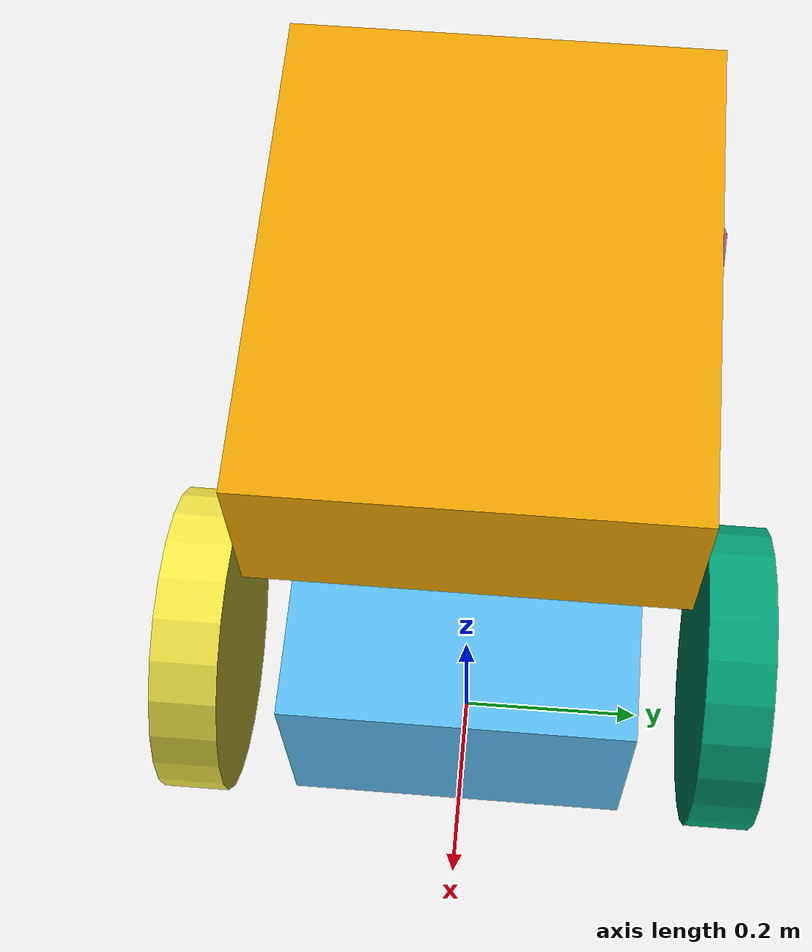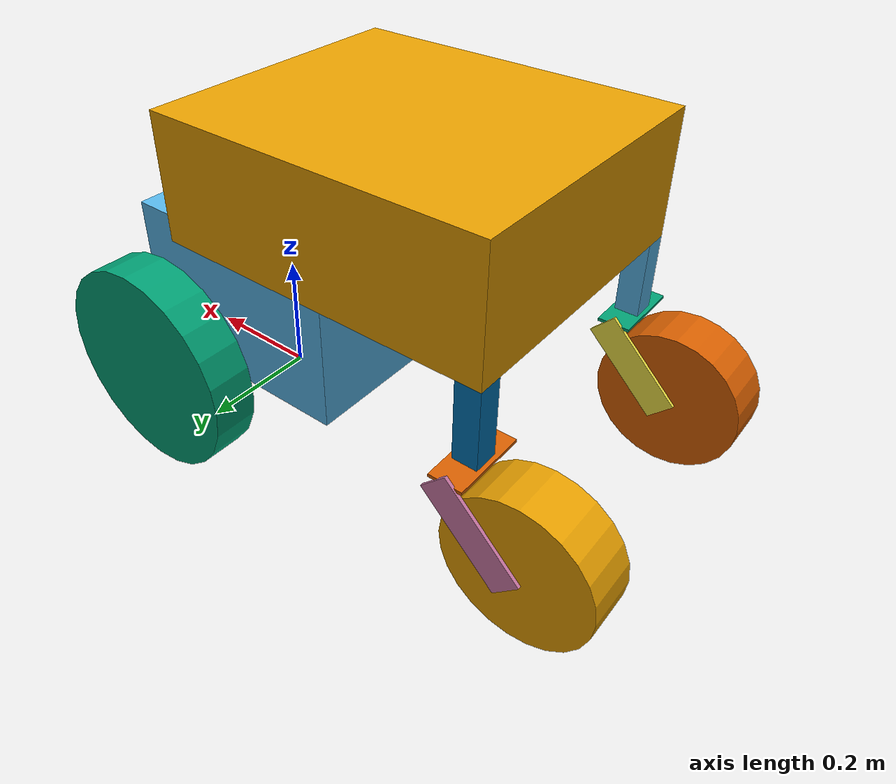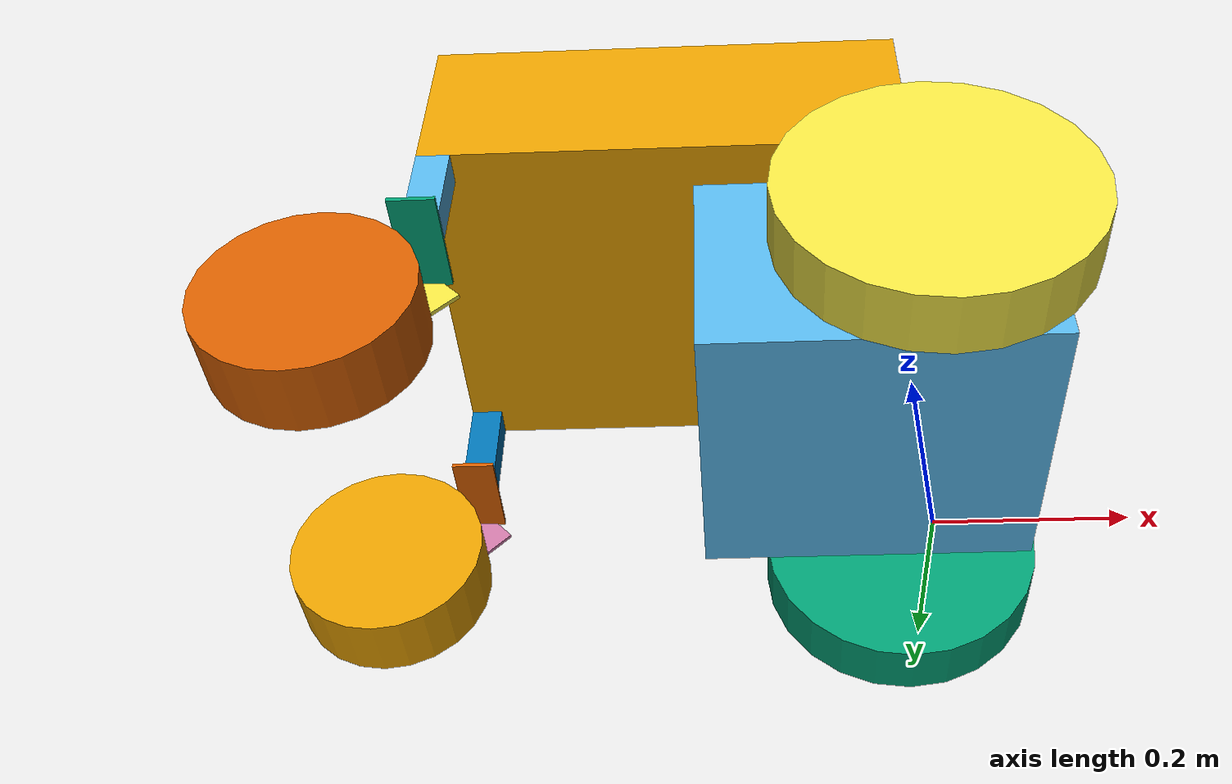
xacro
<?xml version="1.0"?>
<robot
	xmlns:xacro="http://www.ros.org/wiki/xacro" name="mobot">
	<xacro:include filename= "$(find exp1)/urdf/mobot_xacro_defs.xacro" />
	<xacro:include filename= "$(find exp1)/urdf/mobot_static_links.xacro" />
	<xacro:include filename= "$(find exp1)/urdf/mobot_wheels.xacro" />
	<xacro:include filename= "$(find exp1)/urdf/casters.xacro" />
	<xacro:include filename= "$(find exp1)/urdf/gazebo_tags.xacro" />
</robot>

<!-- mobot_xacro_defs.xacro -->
<robot
	xmlns:xacro="http://www.ros.org/wiki/xacro" >
	<!-- define the base-link origin to lie at floor level, between the drive wheels -->
	<!-- main body is a simple box: origin is a center of box -->
	<xacro:property name="bodylen" value="0.5461" />
	<xacro:property name="bodywidth" value="0.4572" />
	<xacro:property name="bodyheight" value="0.2" />
	<xacro:property name="bodyclearance" value="0.4" />
	<!-- clearance from bottom of the box to ground -->

	<!--derived values -->
	<xacro:property name="half_bodylen" value="${bodylen/2.0}" />
	<xacro:property name="half_bodyheight" value="${bodyheight/2.0}" />
	<!-- placement of the main body relative to base link frame -->
	<xacro:property name="bodyOX" value="${-half_bodylen}" />
	<xacro:property name="bodyOY" value="0" />
	<xacro:property name="bodyOZ" value="0.45" />

	<!--define the drive-wheel dimensions -->
	<xacro:property name="tirediam" value="0.3302" />
	<xacro:property name="tirerad" value="${tirediam/2.0}" />
	<xacro:property name="tirewidth" value="0.06985" />
	<!-- "track" is the distance between the drive wheels -->
	<xacro:property name="track" value="0.56515" />

	<!-- battery box -->
	<xacro:property name="batterylen" value="0.381" />
	<xacro:property name="batterywidth" value="0.3556" />
	<xacro:property name="batteryheight" value="0.254" />
	<!-- placement of battery box realtive to the base link frame -->
	<xacro:property name="batOX" value="-0.05" />
	<xacro:property name="batOY" value="0" />
	<xacro:property name="batOZ" value="0.22" />

	<xacro:property name="M_PI" value="3.1415926535897932" />
	<xacro:property name="boschwidth" value="0.0381" />
	<xacro:property name="casterdrop" value="0.125" />
	<xacro:property name="bracketwidth" value="0.1175" />
	<xacro:property name="bracketheight" value="0.16" />
	<xacro:property name="bracketthick" value="0.0508" />
	<xacro:property name="bracketangle" value="0.7854" />
	<xacro:property name="casterwidth" value="0.0826" />
	<xacro:property name="casterdiam" value="0.2286" />

	<!-- here is a default inertial matrix with small, but legal values; use this when don't need accuracy for I-->
	<!-- model will assign inertia matrix dominated by, main body box -->
	<xacro:macro name="default_inertial" params="mass">
		<inertial>
			<mass value="${mass}"/>
			<inertia ixx="0.01" ixy="0.0" ixz="0.0" iyy="0.01" iyz="0.0" izz="0.01"	/>
		</inertial>
	</xacro:macro>
	<xacro:default_inertial mass="1"/>
</robot>

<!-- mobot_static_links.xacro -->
<robot
	xmlns:xacros="http://www.ros.org/wiki/xacro" name="static_links">
	<link name="base_link">
	  <visual>
	    <geometry>
		<box size="${bodylen} ${bodywidth} ${bodyheight}"/>
	    </geometry>
	    <origin xyz="${bodyOX} ${bodyOY} ${bodyOZ}" rpy="0 0 0"/>
	  </visual>

	  <collision>
	    <geometry>
		<box size="${bodylen} ${bodywidth} ${bodyheight}"/>
	    </geometry>
	    <origin xyz="${bodyOX} ${bodyOY} ${bodyOZ}" rpy="0 0 0"/>
	  </collision>

	  <inertial>
		<!-- assign almost all mass to the main body box; m=100kg; treat I as approx m*r^2 -->
		<mass value="100"/>
		<inertia ixx="10" ixy="0" ixz="0" iyy="10" iyz="0" izz="10"/>
	  </inertial>
	</link>

	<link name="batterybox">
	  <visual>
	    <geometry>
		<box size="${batterylen} ${batterywidth} ${batteryheight}"/>
	    </geometry>
	    <origin xyz="0 0 0" rpy="0 0 0"/>
	  </visual>

	  <collision>
	    <geometry>
		<box size="${batterylen} ${batterywidth} ${batteryheight}"/>
	    </geometry>
	    <origin xyz="0 0 0" rpy="0 0 0"/>
	  </collision>
	</link>
	<joint name="batterytobase" type="fixed">
		<parent link="base_link"/>
		<child link="batterybox"/>
		<origin xyz="${batOX} ${batOY} ${batOZ}" rpy="0 0 0"/>
	</joint>
</robot>

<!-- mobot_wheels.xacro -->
<robot
	xmlns:xacro="http://www.ros.org/wiki/xacro" name="wheels">
	<xacro:macro name="wheel" params="prefix reflex">
	  <link name="${prefix}_wheel">
	    <visual>
	      <geometry>
		<cylinder radius="${tirerad}" length="${tirewidth}"/>
	      </geometry>
	    </visual>
	    <collision>
		<geometry>
		   <cylinder radius="${tirerad}" length="${tirewidth}"/>
	        </geometry>
	    </collision>
	    <inertial>
	    <!-- assign inertial properties to drive wheels -->
	    <mass value="1" />
	    <inertia ixx="0.1" ixy="0" ixz="0" iyy="0.1" iyz="0" izz="0.1" />
	    </inertial>
	  </link>
	  <joint name="${prefix}_wheel_joint" type="continuous">
		<axis xyz="0 0 1"/>
		<parent link="base_link"/>
		<child link="${prefix}_wheel"/>
		<origin xyz="0 ${reflex*track/2} ${tirerad}" rpy="0 ${M_PI/2} ${M_PI/2}" />
		<limit effort="100" velocity="15"/>
		<joint_properties damping="0.0" friction="0.0" />
	  </joint>
	</xacro:macro>
	<xacro:wheel prefix="left" reflex="1"/>
	<xacro:wheel prefix="right" reflex="-1"/>
</robot>

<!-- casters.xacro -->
<robot
	xmlns:xacro="http://www.ros.org/wiki/xacro" name="casters">

	<xacro:macro name="caster" params="prefix reflect">

		<!-- The link that is gonna attach to the base link -->
		<link name="castdrop_${prefix}">
		  <visual>
		    <geometry>
			<box size="${boschwidth} ${boschwidth} ${casterdrop}"/>
		    </geometry>
		    <origin xyz="0 0 0" rpy="0 0 0"/>
		  </visual>
		  <collision>
		    <geometry>
			<box size="${boschwidth} ${boschwidth} ${casterdrop}"/>
		    </geometry>
		    <origin xyz="0 0 0" rpy="0 0 0"/>
		  </collision>
		  <xacro:default_inertial mass="0.2"/>
		</link>
		<!-- joint attaching the whole casters to the base_link -->
		<joint name="cast2base_${prefix}" type="fixed">
			<parent link="base_link"/>
			<child link="castdrop_${prefix}"/>
			<origin xyz="${-bodylen/2+bodyOX+boschwidth/2} ${reflect*bodywidth/2-reflect*boschwidth/2} ${-casterdrop/2- bodyheight/2+bodyOZ}" />
		</joint>

		<!-- The backaets on both sides that holds the wheels with the bracket top -->
		<link name="brackettop_${prefix}">
		  <visual>
		    <geometry>
			<box size="${bracketwidth} ${bracketthick} 0.005"/>
		    </geometry>
		    <origin xyz="0 0 0" rpy="0 0 0"/>
		  </visual>
		  <collision>
		    <geometry>
			<box size="${bracketwidth} ${bracketthick} 0.005"/>
		    </geometry>
		    <origin xyz="0 0 0" rpy="0 0 0"/>
		  </collision>
		  <xacro:default_inertial mass="0.2"/>
		</link>
		<!--  connecting to the casters -->
		<joint name="cast2bracket_${prefix}" type="continuous">
			<axis xyz="0 0 1" />
			<parent link="castdrop_${prefix}"/>
			<child link="brackettop_${prefix}"/>
			<origin xyz="0 0 ${-casterdrop/2}" rpy="0 0 ${M_PI/2}"/>
			<joint_properties damping="0.0" friction="0.0"/>
		</joint>

		<link name="bracketside1_${prefix}">
		  <visual>
		    <geometry>
			<box size="${bracketthick} ${bracketheight} 0.005"/>
		    </geometry>
		    <origin xyz="0 0 0" rpy="${M_PI/2} ${-bracketangle} ${M_PI/2}"/>
		  </visual>
		  <collision>
		    <geometry>
			<box size="${bracketthick} ${bracketheight} 0.005"/>
		    </geometry>
		    <origin xyz="0 0 0" rpy="${M_PI/2} ${-bracketangle} ${M_PI/2}"/>
		  </collision>
		  <xacro:default_inertial mass="0.2"/>
		</link>
		<!-- connecting bracket side 1 to bracket top -->
		<joint name="bracket2top1_${prefix}" type="fixed">
			<parent link="brackettop_${prefix}"/>
			<child link="bracketside1_${prefix}"/>
			<origin xyz="${bracketwidth/2} 0.04 -${bracketheight/2-0.02}" rpy="0 0 0"/>
			<joint_properties damping="0.0" friction="0.0"/>
		</joint>

		<link name="bracketside2_${prefix}">
		  <visual>
		    <geometry>
			<box size="${bracketthick} ${bracketheight} 0.005"/>
		    </geometry>
		    <origin xyz="0 0 0" rpy="${M_PI/2} ${-bracketangle} ${M_PI/2}"/>
		  </visual>
		  <collision>
		    <geometry>
			<box size="${bracketthick} ${bracketheight} 0.005"/>
		    </geometry>
		    <origin xyz="0 0 0" rpy="${M_PI/2} ${-bracketangle} ${M_PI/2}"/>
		  </collision>
		  <xacro:default_inertial mass="0.2"/>
		</link>
		<!-- connecting bracket side 2 to bracket top -->
		<joint name="bracket2top2_${prefix}" type="fixed">
			<parent link="brackettop_${prefix}"/>
			<child link="bracketside2_${prefix}"/>
			<origin xyz="${bracketwidth/2} 0.04 -${bracketheight/2-0.02}" rpy="0 0 0"/>
			<joint_properties damping="0.0" friction="0.0"/>
		</joint>

		<!-- front wheel connected to the brackets -->
		<link name="${prefix}_casterwheel">
		  <visual>
		    <geometry>
			<cylinder radius="${casterdiam/2}" length="${casterwidth}"/>
		    </geometry>
		  </visual>
		  <collision>
		    <geometry>
			<cylinder radius="${casterdiam/2}" length="${casterwidth}"/>
		    </geometry>
		  </collision>
		  <xacro:default_inertial mass="0.5"/>
		</link>
		<!-- connecting front wheels to the bracket side 1 -->
		<joint name="${prefix}_caster_joint" type="continuous">
			<axis xyz="0 0 1" />
			<parent link="bracketside1_${prefix}"/>
			<child link="${prefix}_casterwheel"/>
			<origin xyz="${-casterwidth/2-0.02} 0.053 -0.053" rpy="0 ${M_PI/2} 0"/>
			<limit effort="100" velocity="15"/>
			<joint_properties damping="0.0" friction="0.0"/>
		</joint>
	</xacro:macro>
	<xacro:caster prefix="left" reflect="1"/>
	<xacro:caster prefix="right" reflect="-1"/>
</robot>
